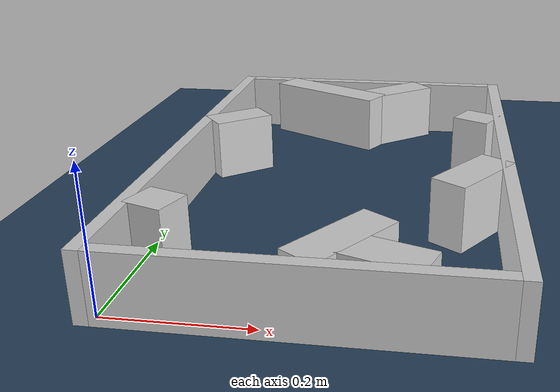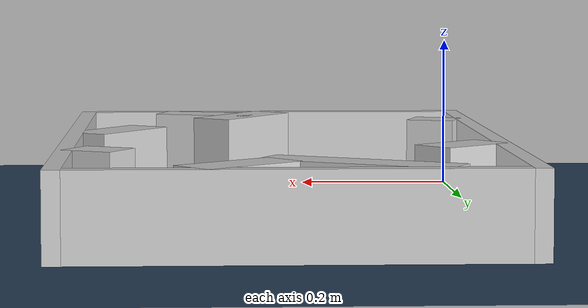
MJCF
<?xml version="1.0" ?>
<mujoco model="generated_real_template">
  <compiler angle="degree"/>
  <option timestep="0.002" integrator="implicitfast" iterations="100" cone="elliptic"/>
  <default>
    <geom density="1"/>
  </default>
  <asset>
    <texture builtin="gradient" height="3072" rgb1="0.3 0.5 0.7" rgb2="0 0 0" type="skybox" width="512"/>
    <texture builtin="checker" height="300" mark="edge" markrgb="0.8 0.8 0.8" name="groundplane" rgb1="0.2 0.3 0.4" rgb2="0.1 0.2 0.3" type="2d" width="300"/>
    <material name="groundplane" reflectance="0.2" texrepeat="5 5" texture="groundplane" texuniform="true"/>
  </asset>
  <worldbody>
    <light dir="0 0 -1" directional="true" pos="0 0 1.5"/>
    <geom name="floor" type="plane" condim="4" friction="0.5 0.005 0.001" material="groundplane" size="0 0 0.05"/>
    <body name="walls">
      <geom name="wall_boundary_left" type="box" condim="4" friction="1.0 0.005 0.0001" rgba="0.8 0.8 0.8 1" pos="-0.010000 0.387500 0.050000" euler="0 0 0.000000" size="0.010000 0.407500 0.050000"/>
      <geom name="wall_boundary_right" type="box" condim="4" friction="1.0 0.005 0.0001" rgba="0.8 0.8 0.8 1" pos="0.500000 0.387500 0.050000" euler="0 0 0.000000" size="0.010000 0.407500 0.050000"/>
      <geom name="wall_boundary_bottom" type="box" condim="4" friction="1.0 0.005 0.0001" rgba="0.8 0.8 0.8 1" pos="0.245000 -0.010000 0.050000" euler="0 0 0.000000" size="0.245000 0.010000 0.050000"/>
      <geom name="wall_boundary_top" type="box" condim="4" friction="1.0 0.005 0.0001" rgba="0.8 0.8 0.8 1" pos="0.245000 0.785000 0.050000" euler="0 0 0.000000" size="0.245000 0.010000 0.050000"/>
      <geom name="wall_inner_1_1" type="box" condim="4" friction="1.0 0.005 0.0001" rgba="0.8 0.8 0.8 1" pos="0.174826 0.715712 0.050000" euler="0 0 -28.415666" size="0.113942 0.028500 0.050000"/>
      <geom name="wall_inner_1_2" type="box" condim="4" friction="1.0 0.005 0.0001" rgba="0.8 0.8 0.8 1" pos="0.461720 0.560488 0.050000" euler="0 0 -28.415666" size="0.032154 0.028500 0.050000"/>
      <geom name="wall_inner_2_1" type="box" condim="4" friction="1.0 0.005 0.0001" rgba="0.8 0.8 0.8 1" pos="0.287129 0.061166 0.050000" euler="0 0 55.184719" size="0.074502 0.028500 0.050000"/>
      <geom name="wall_inner_2_2" type="box" condim="4" friction="1.0 0.005 0.0001" rgba="0.8 0.8 0.8 1" pos="0.448867 0.293744 0.050000" euler="0 0 55.184719" size="0.066090 0.028500 0.050000"/>
      <geom name="wall_inner_3_1" type="box" condim="4" friction="1.0 0.005 0.0001" rgba="0.8 0.8 0.8 1" pos="0.305303 0.730817 0.050000" euler="0 0 -140.383440" size="0.066224 0.028500 0.050000"/>
      <geom name="wall_inner_3_2" type="box" condim="4" friction="1.0 0.005 0.0001" rgba="0.8 0.8 0.8 1" pos="0.039151 0.510508 0.050000" euler="0 0 -140.383440" size="0.050824 0.028500 0.050000"/>
      <geom name="wall_inner_4_1" type="box" condim="4" friction="1.0 0.005 0.0001" rgba="0.8 0.8 0.8 1" pos="0.029411 0.134359 0.050000" euler="0 0 -19.148642" size="0.031134 0.028500 0.050000"/>
      <geom name="wall_inner_4_2" type="box" condim="4" friction="1.0 0.005 0.0001" rgba="0.8 0.8 0.8 1" pos="0.333723 0.028692 0.050000" euler="0 0 -19.148642" size="0.066363 0.028500 0.050000"/>
    </body>
  </worldbody>
</mujoco>
